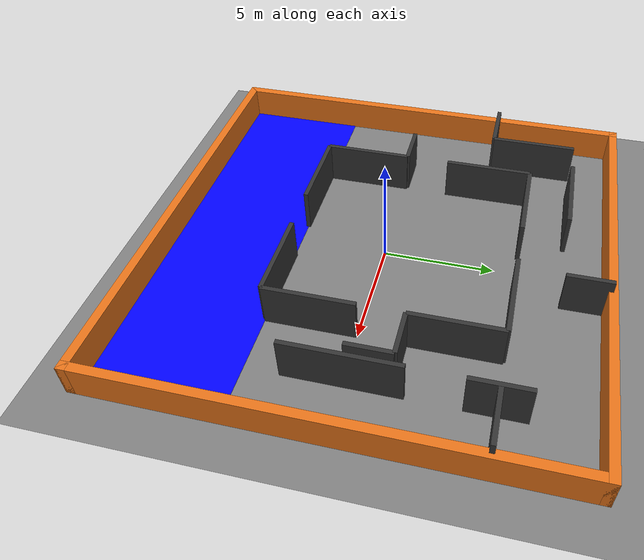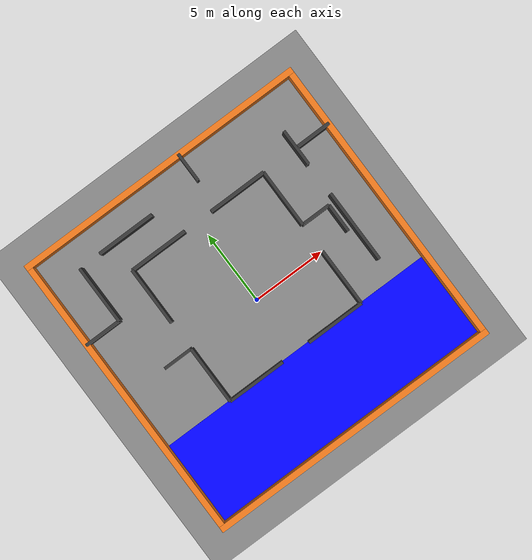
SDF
<?xml version="1.0" ?>
<sdf version="1.9">
  <!-- PX4-friendly competition arena: no embedded rex_quadcopter models. -->
  <!-- Drones are spawned dynamically by PX4 SITL via px4_swarm_fast.launch.py -->
  <world name="playfield">
    <!-- Finer physics step (2ms) for more stable multicopter dynamics; reduces flip/crash. -->
    <physics name="2ms" type="ode">
      <max_step_size>0.002</max_step_size>
      <real_time_factor>1.0</real_time_factor>
      <real_time_update_rate>500</real_time_update_rate>
    </physics>

    <gui fullscreen='0'>
      <camera name='user_camera'>
        <pose>0 0 25 0 1.5708 1.5708</pose>
        <view_controller>orbit</view_controller>
        <projection_type>orthographic</projection_type>
      </camera>
    </gui>

    <plugin filename="gz-sim-physics-system" name="gz::sim::systems::Physics" />
    <plugin filename="gz-sim-user-commands-system" name="gz::sim::systems::UserCommands" />
    <!-- PX4 SITL sensors (IMU / barometer / GPS) require these system plugins. -->
    <plugin filename="gz-sim-contact-system" name="gz::sim::systems::Contact" />
    <plugin filename="gz-sim-imu-system" name="gz::sim::systems::Imu" />
    <plugin filename="gz-sim-air-pressure-system" name="gz::sim::systems::AirPressure" />
    <plugin filename="gz-sim-apply-link-wrench-system" name="gz::sim::systems::ApplyLinkWrench" />
    <plugin filename="gz-sim-navsat-system" name="gz::sim::systems::NavSat" />
    <plugin filename="gz-sim-sensors-system" name="gz::sim::systems::Sensors"><render_engine>ogre2</render_engine></plugin>
    <plugin filename="gz-sim-scene-broadcaster-system" name="gz::sim::systems::SceneBroadcaster" />

    <light type="directional" name="sun">
      <cast_shadows>false</cast_shadows>
      <pose>0 0 10 0 0 0</pose>
      <diffuse>0.8 0.8 0.8 1</diffuse>
      <specular>0.2 0.2 0.2 1</specular>
      <direction>-0.5 0.1 -0.9</direction>
    </light>

    <model name="ground_plane">
      <static>true</static>
      <link name="link">
        <collision name="collision"><geometry><plane><normal>0 0 1</normal><size>20 20</size></plane></geometry></collision>
        <visual name="visual"><geometry><plane><normal>0 0 1</normal><size>20 20</size></plane></geometry>
          <material>
            <ambient>0.5 0.5 0.5 1</ambient>
            <diffuse>0.5 0.5 0.5 1</diffuse>
          </material>
        </visual>
      </link>
    </model>

    <model name="start_area_indicator">
      <static>true</static>
      <pose>0 -7 0.01 0 0 0</pose>
      <link name="link">
        <visual name="visual"><geometry><box><size>20 6 0.02</size></box></geometry>
          <material>
            <ambient>0 0 1 0.9</ambient>
            <diffuse>0 0 1 0.9</diffuse>
          </material>
        </visual>
      </link>
    </model>

    <!-- Spawn zone: blue start area (y=-10 to -4, x=-10 to 10). Used by spawn_selector for default spawns. -->
    <model name="spawn_zone">
      <static>true</static>
      <pose>0 -7 0 0 0 0</pose>
      <link name="link">
        <visual name="visual">
          <geometry><plane><normal>0 0 1</normal><size>20 6</size></plane></geometry>
          <material><ambient>0 0 0 0</ambient><diffuse>0 0 0 0</diffuse></material>
        </visual>
      </link>
    </model>

    <model name="wall_n"><static>true</static><pose>0 10 0.75 0 0 0</pose><link name="l"><collision name="c"><geometry><box><size>20.4 0.4 1.5</size></box></geometry></collision><visual name="v"><geometry><box><size>20.4 0.4 1.5</size></box></geometry><material><ambient>0.9 0.45 0.1 1</ambient><diffuse>0.9 0.45 0.1 1</diffuse></material></visual></link></model>
    <model name="wall_s"><static>true</static><pose>0 -10 0.75 0 0 0</pose><link name="l"><collision name="c"><geometry><box><size>20.4 0.4 1.5</size></box></geometry></collision><visual name="v"><geometry><box><size>20.4 0.4 1.5</size></box></geometry><material><ambient>0.9 0.45 0.1 1</ambient><diffuse>0.9 0.45 0.1 1</diffuse></material></visual></link></model>
    <model name="wall_e"><static>true</static><pose>10 0 0.75 0 0 0</pose><link name="l"><collision name="c"><geometry><box><size>0.4 20.4 1.5</size></box></geometry></collision><visual name="v"><geometry><box><size>0.4 20.4 1.5</size></box></geometry><material><ambient>0.9 0.45 0.1 1</ambient><diffuse>0.9 0.45 0.1 1</diffuse></material></visual></link></model>
    <model name="wall_w"><static>true</static><pose>-10 0 0.75 0 0 0</pose><link name="l"><collision name="c"><geometry><box><size>0.4 20.4 1.5</size></box></geometry></collision><visual name="v"><geometry><box><size>0.4 20.4 1.5</size></box></geometry><material><ambient>0.9 0.45 0.1 1</ambient><diffuse>0.9 0.45 0.1 1</diffuse></material></visual></link></model>

    <model name="inner_1_1"><static>true</static><pose>-7.5 6 1 0 0 0</pose><link name="l"><collision name="c"><geometry><box><size>0.2 4 2</size></box></geometry></collision><visual name="v"><geometry><box><size>0.2 4 2</size></box></geometry><material><ambient>0.2 0.2 0.2 1</ambient><diffuse>0.2 0.2 0.2 1</diffuse></material></visual></link></model>
    <model name="inner_1_2"><static>true</static><pose>-8.75 4 1 0 0 0</pose><link name="l"><collision name="c"><geometry><box><size>2.5 0.2 2</size></box></geometry></collision><visual name="v"><geometry><box><size>2.5 0.2 2</size></box></geometry><material><ambient>0.2 0.2 0.2 1</ambient><diffuse>0.2 0.2 0.2 1</diffuse></material></visual></link></model>

    <model name="inner_2_1"><static>true</static><pose>-4 8 1 0 0 0</pose><link name="l"><collision name="c"><geometry><box><size>4 0.2 2</size></box></geometry></collision><visual name="v"><geometry><box><size>4 0.2 2</size></box></geometry><material><ambient>0.2 0.2 0.2 1</ambient><diffuse>0.2 0.2 0.2 1</diffuse></material></visual></link></model>

    <model name="inner_3_1"><static>true</static><pose>1.5 9 1 0 0 0</pose><link name="l"><collision name="c"><geometry><box><size>0.2 2 2</size></box></geometry></collision><visual name="v"><geometry><box><size>0.2 2 2</size></box></geometry><material><ambient>0.2 0.2 0.2 1</ambient><diffuse>0.2 0.2 0.2 1</diffuse></material></visual></link></model>

    <model name="inner_4_1"><static>true</static><pose>7.5 6 1 0 0 0</pose><link name="l"><collision name="c"><geometry><box><size>0.2 2.5 2</size></box></geometry></collision><visual name="v"><geometry><box><size>0.2 2.5 2</size></box></geometry><material><ambient>0.2 0.2 0.2 1</ambient><diffuse>0.2 0.2 0.2 1</diffuse></material></visual></link></model>
    <model name="inner_4_2"><static>true</static><pose>8.75 6 1 0 0 0</pose><link name="l"><collision name="c"><geometry><box><size>2.5 0.2 2</size></box></geometry></collision><visual name="v"><geometry><box><size>2.5 0.2 2</size></box></geometry><material><ambient>0.2 0.2 0.2 1</ambient><diffuse>0.2 0.2 0.2 1</diffuse></material></visual></link></model>

    <model name="inner_5_1"><static>true</static><pose>-5 4 1 0 0 0</pose><link name="l"><collision name="c"><geometry><box><size>0.2 4 2</size></box></geometry></collision><visual name="v"><geometry><box><size>0.2 4 2</size></box></geometry><material><ambient>0.2 0.2 0.2 1</ambient><diffuse>0.2 0.2 0.2 1</diffuse></material></visual></link></model>
    <model name="inner_5_2"><static>true</static><pose>-3 6 1 0 0 0</pose><link name="l"><collision name="c"><geometry><box><size>4 0.2 2</size></box></geometry></collision><visual name="v"><geometry><box><size>4 0.2 2</size></box></geometry><material><ambient>0.2 0.2 0.2 1</ambient><diffuse>0.2 0.2 0.2 1</diffuse></material></visual></link></model>

    <model name="inner_6_1"><static>true</static><pose>-6 0 1 0 0 0</pose><link name="l"><collision name="c"><geometry><box><size>2 0.2 2</size></box></geometry></collision><visual name="v"><geometry><box><size>2 0.2 2</size></box></geometry><material><ambient>0.2 0.2 0.2 1</ambient><diffuse>0.2 0.2 0.2 1</diffuse></material></visual></link></model>
    <model name="inner_6_2"><static>true</static><pose>-5 -2 1 0 0 0</pose><link name="l"><collision name="c"><geometry><box><size>0.2 4 2</size></box></geometry></collision><visual name="v"><geometry><box><size>0.2 4 2</size></box></geometry><material><ambient>0.2 0.2 0.2 1</ambient><diffuse>0.2 0.2 0.2 1</diffuse></material></visual></link></model>
    <model name="inner_6_3"><static>true</static><pose>-3 -4 1 0 0 0</pose><link name="l"><collision name="c"><geometry><box><size>4 0.2 2</size></box></geometry></collision><visual name="v"><geometry><box><size>4 0.2 2</size></box></geometry><material><ambient>0.2 0.2 0.2 1</ambient><diffuse>0.2 0.2 0.2 1</diffuse></material></visual></link></model>

    <model name="inner_7_1"><static>true</static><pose>3 -4 1 0 0 0</pose><link name="l"><collision name="c"><geometry><box><size>4 0.2 2</size></box></geometry></collision><visual name="v"><geometry><box><size>4 0.2 2</size></box></geometry><material><ambient>0.2 0.2 0.2 1</ambient><diffuse>0.2 0.2 0.2 1</diffuse></material></visual></link></model>
    <model name="inner_7_2"><static>true</static><pose>5 -2 1 0 0 0</pose><link name="l"><collision name="c"><geometry><box><size>0.2 4 2</size></box></geometry></collision><visual name="v"><geometry><box><size>0.2 4 2</size></box></geometry><material><ambient>0.2 0.2 0.2 1</ambient><diffuse>0.2 0.2 0.2 1</diffuse></material></visual></link></model>

    <model name="inner_8_1"><static>true</static><pose>3 6 1 0 0 0</pose><link name="l"><collision name="c"><geometry><box><size>4 0.2 2</size></box></geometry></collision><visual name="v"><geometry><box><size>4 0.2 2</size></box></geometry><material><ambient>0.2 0.2 0.2 1</ambient><diffuse>0.2 0.2 0.2 1</diffuse></material></visual></link></model>
    <model name="inner_8_2"><static>true</static><pose>5 4 1 0 0 0</pose><link name="l"><collision name="c"><geometry><box><size>0.2 4 2</size></box></geometry></collision><visual name="v"><geometry><box><size>0.2 4 2</size></box></geometry><material><ambient>0.2 0.2 0.2 1</ambient><diffuse>0.2 0.2 0.2 1</diffuse></material></visual></link></model>
    <model name="inner_8_3"><static>true</static><pose>6 2 1 0 0 0</pose><link name="l"><collision name="c"><geometry><box><size>2 0.2 2</size></box></geometry></collision><visual name="v"><geometry><box><size>2 0.2 2</size></box></geometry><material><ambient>0.2 0.2 0.2 1</ambient><diffuse>0.2 0.2 0.2 1</diffuse></material></visual></link></model>
    <model name="inner_8_4"><static>true</static><pose>7 1 1 0 0 0</pose><link name="l"><collision name="c"><geometry><box><size>0.2 2 2</size></box></geometry></collision><visual name="v"><geometry><box><size>0.2 2 2</size></box></geometry><material><ambient>0.2 0.2 0.2 1</ambient><diffuse>0.2 0.2 0.2 1</diffuse></material></visual></link></model>

    <!-- unknown_area_boundary_s, unknown_area_boundary_n models commented out -->
    <model name="inner_r_1"><static>true</static><pose>7.5 0 1 0 0 1.57</pose><link name="l"><collision name="c"><geometry><box><size>5 0.2 2</size></box></geometry></collision><visual name="v"><geometry><box><size>5 0.2 2</size></box></geometry><material><ambient>0.2 0.2 0.2 1</ambient><diffuse>0.2 0.2 0.2 1</diffuse></material></visual></link></model>

    <!-- Drones spawned by PX4 SITL via px4_swarm_fast.launch.py -->
  </world>
</sdf>
